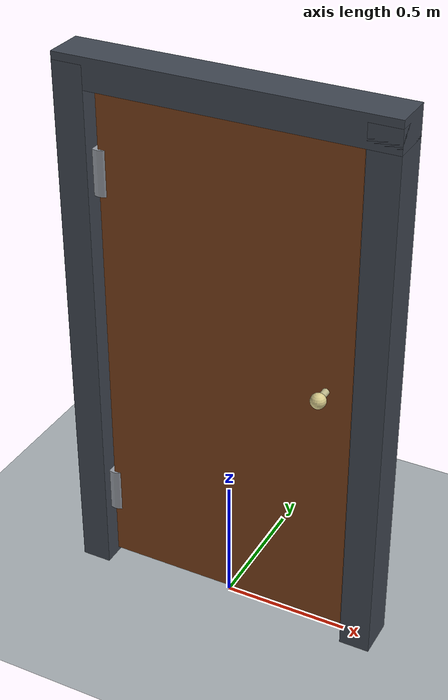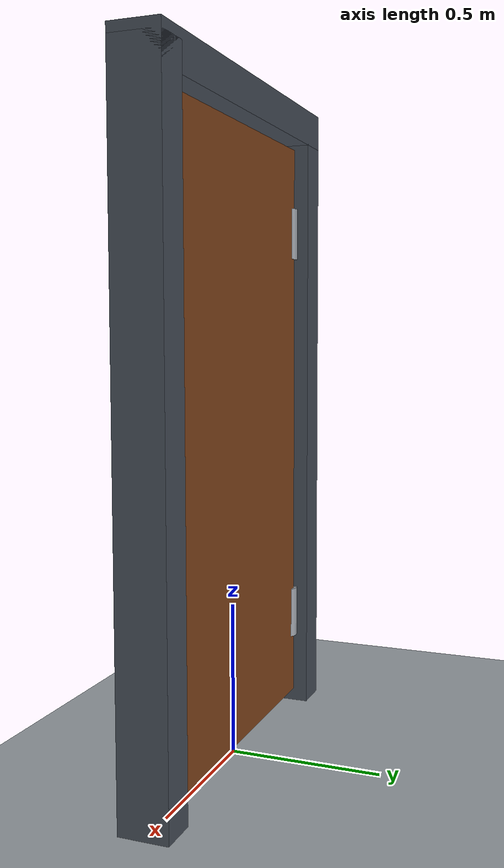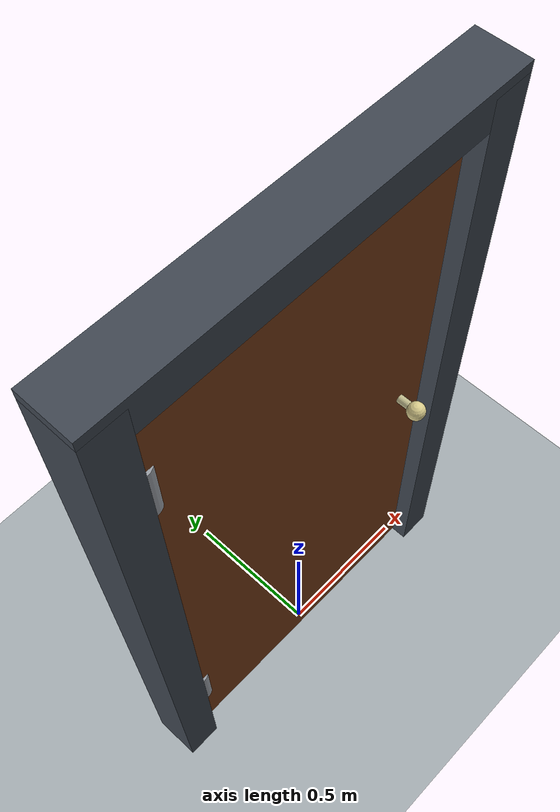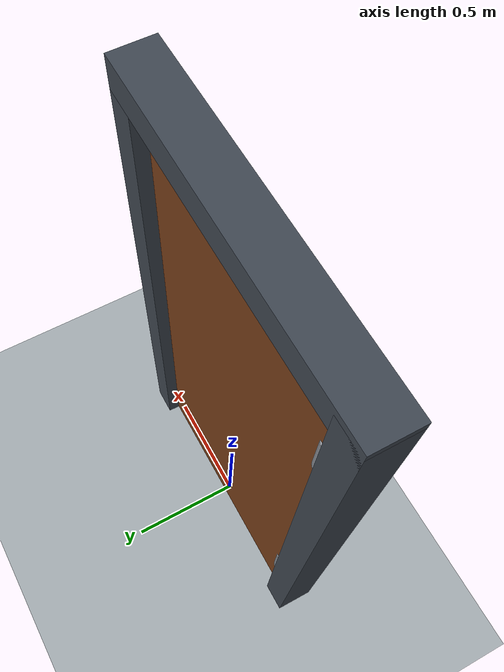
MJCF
<mujoco model="self_closing_door">
  <compiler angle="radian"/>
  <option timestep="0.002"/>
  <statistic center="0 0 1" extent="3"/>

  <worldbody>
    <light name="overhead_light" pos="0 -2 4" dir="0 0 -1"/>
    <geom name="floor" type="plane" size="4 4 0.1" rgba="0.65 0.68 0.70 1" friction="1 0.005 0.0001"/>

    <body name="door_frame" pos="0 0 0">
      <geom name="frame_left" type="box" pos="-0.58 0 1.08" size="0.06 0.08 1.08" contype="0" conaffinity="0" rgba="0.25 0.28 0.32 1"/>
      <geom name="frame_right" type="box" pos="0.58 0 1.08" size="0.06 0.08 1.08" contype="0" conaffinity="0" rgba="0.25 0.28 0.32 1"/>
      <geom name="frame_top" type="box" pos="0 0 2.13" size="0.64 0.08 0.06" contype="0" conaffinity="0" rgba="0.25 0.28 0.32 1"/>
      <geom name="hinge_upper" type="cylinder" pos="-0.5 0 1.75" size="0.045 0.09" contype="0" conaffinity="0" rgba="0.6 0.62 0.65 1"/>
      <geom name="hinge_lower" type="cylinder" pos="-0.5 0 0.35" size="0.045 0.09" contype="0" conaffinity="0" rgba="0.6 0.62 0.65 1"/>
    </body>

    <body name="door" pos="-0.5 0 1.05">
      <joint name="hinge" type="hinge" pos="0 0 0" axis="0 0 1" limited="true" range="0 1.6" stiffness="24" springref="-0.08" damping="14" armature="0.02" solreflimit="0.01 1" solimplimit="0.99 0.999 0.001"/>
      <geom name="door_panel" type="box" pos="0.5 0 0" size="0.5 0.035 1" mass="8" rgba="0.48 0.25 0.10 1"/>
      <geom name="door_handle_stem" type="capsule" fromto="0.9 -0.035 0.05 0.9 -0.10 0.05" size="0.014" mass="0.015" rgba="0.75 0.73 0.55 1"/>
      <geom name="door_handle" type="sphere" pos="0.9 -0.10 0.05" size="0.03" mass="0.02" rgba="0.85 0.80 0.55 1"/>
    </body>
  </worldbody>

  <keyframe>
    <key name="start" qpos="1.25" qvel="0"/>
  </keyframe>
</mujoco>
